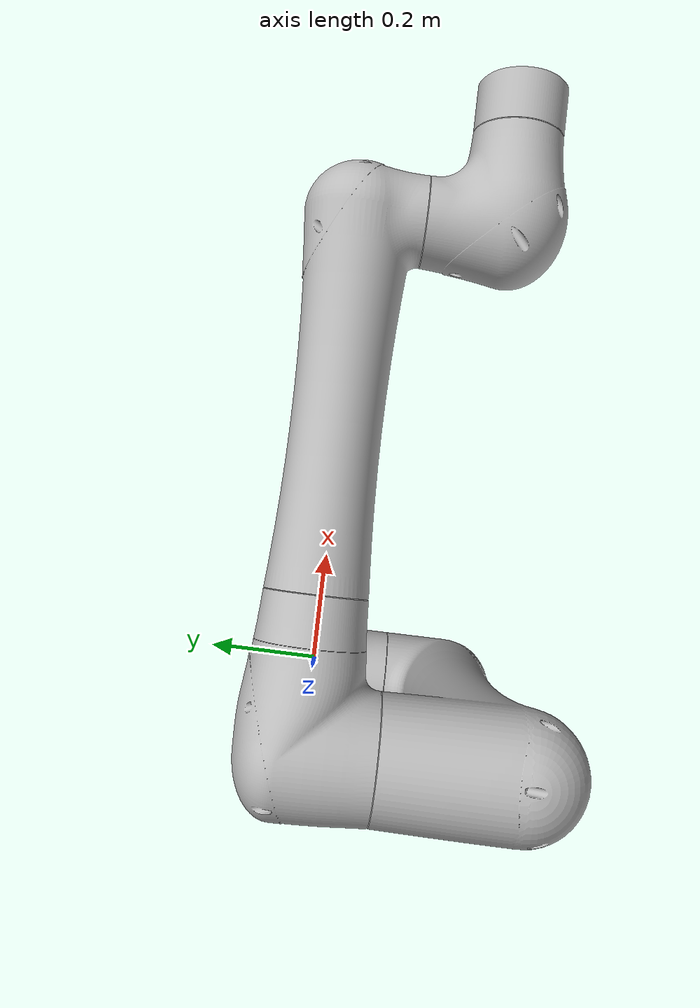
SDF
<sdf version='1.7'>
  <model name='robot_arm'>
    <joint name='base_joint' type='fixed'>
      <pose relative_to='__model__'>0 0 0 0 -0 0</pose>
      <parent>world</parent>
      <child>base_link</child>
    </joint>
    <link name='base_link'>
      <pose relative_to='base_joint'>0 0 0 0 -0 0</pose>
      <inertial>
        <pose>0 0 0 0 -0 0</pose>
        <mass>15</mass>
        <inertia>
          <ixx>0.5</ixx>
          <ixy>0</ixy>
          <ixz>0</ixz>
          <iyy>0.5</iyy>
          <iyz>0</iyz>
          <izz>0.5</izz>
        </inertia>
      </inertial>
      <collision name='base_link_collision'>
        <pose>0 0 0 0 -0 0</pose>
        <geometry>
          <mesh>
            <scale>1 1 1</scale>
            <uri>file:///opt/ros/humble/share/ur_description/meshes/crx10ial/collision/base_link.stl</uri>
          </mesh>
        </geometry>
      </collision>
      <visual name='base_link_visual'>
        <pose>0 0 0 0 -0 0</pose>
        <geometry>
          <mesh>
            <scale>1 1 1</scale>
            <uri>file:///opt/ros/humble/share/ur_description/meshes/crx10ial/visual/base_link.stl</uri>
          </mesh>
        </geometry>
      </visual>
    </link>
    <joint name='joint_1' type='revolute'>
      <pose relative_to='base_link'>0 0 0.245 0 -0 0</pose>
      <parent>base_link</parent>
      <child>link_1</child>
      <axis>
        <xyz>0 0 1</xyz>
        <limit>
          <lower>-3.14159</lower>
          <upper>3.14159</upper>
          <effort>0</effort>
          <velocity>2.0944</velocity>
        </limit>
        <dynamics>
          <spring_reference>0</spring_reference>
          <spring_stiffness>0</spring_stiffness>
        </dynamics>
      </axis>
    </joint>
    <link name='link_1'>
      <pose relative_to='joint_1'>0 0 0 0 -0 0</pose>
      <inertial>
        <pose>0 0 0 0 -0 0</pose>
        <mass>5</mass>
        <inertia>
          <ixx>0.1</ixx>
          <ixy>0</ixy>
          <ixz>0</ixz>
          <iyy>0.1</iyy>
          <iyz>0</iyz>
          <izz>0.1</izz>
        </inertia>
      </inertial>
      <collision name='link_1_collision'>
        <pose>0 0 0 0 -0 0</pose>
        <geometry>
          <mesh>
            <scale>1 1 1</scale>
            <uri>file:///opt/ros/humble/share/ur_description/meshes/crx10ial/collision/link_1.stl</uri>
          </mesh>
        </geometry>
      </collision>
      <visual name='link_1_visual'>
        <pose>0 0 0 0 -0 0</pose>
        <geometry>
          <mesh>
            <scale>1 1 1</scale>
            <uri>file:///opt/ros/humble/share/ur_description/meshes/crx10ial/visual/link_1.stl</uri>
          </mesh>
        </geometry>
      </visual>
    </link>
    <joint name='joint_2' type='revolute'>
      <pose relative_to='link_1'>0 0 0 0 -0 0</pose>
      <parent>link_1</parent>
      <child>link_2</child>
      <axis>
        <xyz>0 1 0</xyz>
        <limit>
          <lower>-3.14159</lower>
          <upper>3.14159</upper>
          <effort>0</effort>
          <velocity>2.0944</velocity>
        </limit>
        <dynamics>
          <spring_reference>0</spring_reference>
          <spring_stiffness>0</spring_stiffness>
        </dynamics>
      </axis>
    </joint>
    <link name='link_2'>
      <pose relative_to='joint_2'>0 0 0 0 -0 0</pose>
      <inertial>
        <pose>0 0 0 0 -0 0</pose>
        <mass>4</mass>
        <inertia>
          <ixx>0.08</ixx>
          <ixy>0</ixy>
          <ixz>0</ixz>
          <iyy>0.08</iyy>
          <iyz>0</iyz>
          <izz>0.08</izz>
        </inertia>
      </inertial>
      <collision name='link_2_collision'>
        <pose>0 0 0 0 -0 0</pose>
        <geometry>
          <mesh>
            <scale>1 1 1</scale>
            <uri>file:///opt/ros/humble/share/ur_description/meshes/crx10ial/collision/link_2.stl</uri>
          </mesh>
        </geometry>
      </collision>
      <visual name='link_2_visual'>
        <pose>0 0 0 0 -0 0</pose>
        <geometry>
          <mesh>
            <scale>1 1 1</scale>
            <uri>file:///opt/ros/humble/share/ur_description/meshes/crx10ial/visual/link_2.stl</uri>
          </mesh>
        </geometry>
      </visual>
    </link>
    <joint name='joint_3' type='revolute'>
      <pose relative_to='link_2'>0 0 0.71 0 -0 0</pose>
      <parent>link_2</parent>
      <child>link_3</child>
      <axis>
        <xyz>0 -1 0</xyz>
        <limit>
          <lower>-4.71239</lower>
          <upper>4.71239</upper>
          <effort>0</effort>
          <velocity>3.14159</velocity>
        </limit>
        <dynamics>
          <spring_reference>0</spring_reference>
          <spring_stiffness>0</spring_stiffness>
        </dynamics>
      </axis>
    </joint>
    <link name='link_3'>
      <pose relative_to='joint_3'>0 0 0 0 -0 0</pose>
      <inertial>
        <pose>0 0 0 0 -0 0</pose>
        <mass>3.5</mass>
        <inertia>
          <ixx>0.06</ixx>
          <ixy>0</ixy>
          <ixz>0</ixz>
          <iyy>0.06</iyy>
          <iyz>0</iyz>
          <izz>0.06</izz>
        </inertia>
      </inertial>
      <collision name='link_3_collision'>
        <pose>0 0 0 0 -0 0</pose>
        <geometry>
          <mesh>
            <scale>1 1 1</scale>
            <uri>file:///opt/ros/humble/share/ur_description/meshes/crx10ial/collision/link_3.stl</uri>
          </mesh>
        </geometry>
      </collision>
      <visual name='link_3_visual'>
        <pose>0 0 0 0 -0 0</pose>
        <geometry>
          <mesh>
            <scale>1 1 1</scale>
            <uri>file:///opt/ros/humble/share/ur_description/meshes/crx10ial/visual/link_3.stl</uri>
          </mesh>
        </geometry>
      </visual>
    </link>
    <joint name='joint_4' type='revolute'>
      <pose relative_to='link_3'>0 0 0 0 -0 0</pose>
      <parent>link_3</parent>
      <child>link_4</child>
      <axis>
        <xyz>-1 0 0</xyz>
        <limit>
          <lower>-3.31613</lower>
          <upper>3.31613</upper>
          <effort>0</effort>
          <velocity>3.14159</velocity>
        </limit>
        <dynamics>
          <spring_reference>0</spring_reference>
          <spring_stiffness>0</spring_stiffness>
        </dynamics>
      </axis>
    </joint>
    <link name='link_4'>
      <pose relative_to='joint_4'>0 0 0 0 -0 0</pose>
      <inertial>
        <pose>0 0 0 0 -0 0</pose>
        <mass>3</mass>
        <inertia>
          <ixx>0.05</ixx>
          <ixy>0</ixy>
          <ixz>0</ixz>
          <iyy>0.05</iyy>
          <iyz>0</iyz>
          <izz>0.05</izz>
        </inertia>
      </inertial>
      <collision name='link_4_collision'>
        <pose>0 0 0 0 -0 0</pose>
        <geometry>
          <mesh>
            <scale>1 1 1</scale>
            <uri>file:///opt/ros/humble/share/ur_description/meshes/crx10ial/collision/link_4.stl</uri>
          </mesh>
        </geometry>
      </collision>
      <visual name='link_4_visual'>
        <pose>0 0 0 0 -0 0</pose>
        <geometry>
          <mesh>
            <scale>1 1 1</scale>
            <uri>file:///opt/ros/humble/share/ur_description/meshes/crx10ial/visual/link_4.stl</uri>
          </mesh>
        </geometry>
      </visual>
    </link>
    <joint name='joint_5' type='revolute'>
      <pose relative_to='link_4'>0.54 -0.15 0 0 -0 0</pose>
      <parent>link_4</parent>
      <child>link_5</child>
      <axis>
        <xyz>0 -1 0</xyz>
        <limit>
          <lower>-3.14159</lower>
          <upper>3.14159</upper>
          <effort>0</effort>
          <velocity>3.14159</velocity>
        </limit>
        <dynamics>
          <spring_reference>0</spring_reference>
          <spring_stiffness>0</spring_stiffness>
        </dynamics>
      </axis>
    </joint>
    <link name='link_5'>
      <pose relative_to='joint_5'>0 0 0 0 -0 0</pose>
      <inertial>
        <pose>0 0 0 0 -0 0</pose>
        <mass>2.5</mass>
        <inertia>
          <ixx>0.04</ixx>
          <ixy>0</ixy>
          <ixz>0</ixz>
          <iyy>0.04</iyy>
          <iyz>0</iyz>
          <izz>0.04</izz>
        </inertia>
      </inertial>
      <collision name='link_5_collision'>
        <pose>0 0 0 0 -0 0</pose>
        <geometry>
          <mesh>
            <scale>1 1 1</scale>
            <uri>file:///opt/ros/humble/share/ur_description/meshes/crx10ial/collision/link_5.stl</uri>
          </mesh>
        </geometry>
      </collision>
      <visual name='link_5_visual'>
        <pose>0 0 0 0 -0 0</pose>
        <geometry>
          <mesh>
            <scale>1 1 1</scale>
            <uri>file:///opt/ros/humble/share/ur_description/meshes/crx10ial/visual/link_5.stl</uri>
          </mesh>
        </geometry>
      </visual>
    </link>
    <joint name='joint_6' type='revolute'>
      <pose relative_to='link_5'>0.16 0 0 0 -0 0</pose>
      <parent>link_5</parent>
      <child>link_6</child>
      <axis>
        <xyz>-1 0 0</xyz>
        <limit>
          <lower>-3.31613</lower>
          <upper>3.31613</upper>
          <effort>0</effort>
          <velocity>3.14159</velocity>
        </limit>
        <dynamics>
          <spring_reference>0</spring_reference>
          <spring_stiffness>0</spring_stiffness>
        </dynamics>
      </axis>
    </joint>
    <link name='link_6'>
      <pose relative_to='joint_6'>0 0 0 0 -0 0</pose>
      <inertial>
        <pose>0 0 0 0 -0 0</pose>
        <mass>2</mass>
        <inertia>
          <ixx>0.03</ixx>
          <ixy>0</ixy>
          <ixz>0</ixz>
          <iyy>0.03</iyy>
          <iyz>0</iyz>
          <izz>0.03</izz>
        </inertia>
      </inertial>
      <collision name='link_6_collision'>
        <pose>0 0 0 0 -0 0</pose>
        <geometry>
          <mesh>
            <scale>1 1 1</scale>
            <uri>file:///opt/ros/humble/share/ur_description/meshes/crx10ial/collision/link_6.stl</uri>
          </mesh>
        </geometry>
      </collision>
      <visual name='link_6_visual'>
        <pose>0 0 0 0 -0 0</pose>
        <geometry>
          <mesh>
            <scale>1 1 1</scale>
            <uri>file:///opt/ros/humble/share/ur_description/meshes/crx10ial/visual/link_6.stl</uri>
          </mesh>
        </geometry>
      </visual>
    </link>
    <static>0</static>
    <plugin name='gazebo_ros2_control' filename='libgazebo_ros2_control.so'>
      <parameters>/home/dhananjay/ws/dexscent_ws/install/ur_description_pkg/share/ur_description_pkg/config/my_controllers.yaml</parameters>
    </plugin>
  </model>
</sdf>
